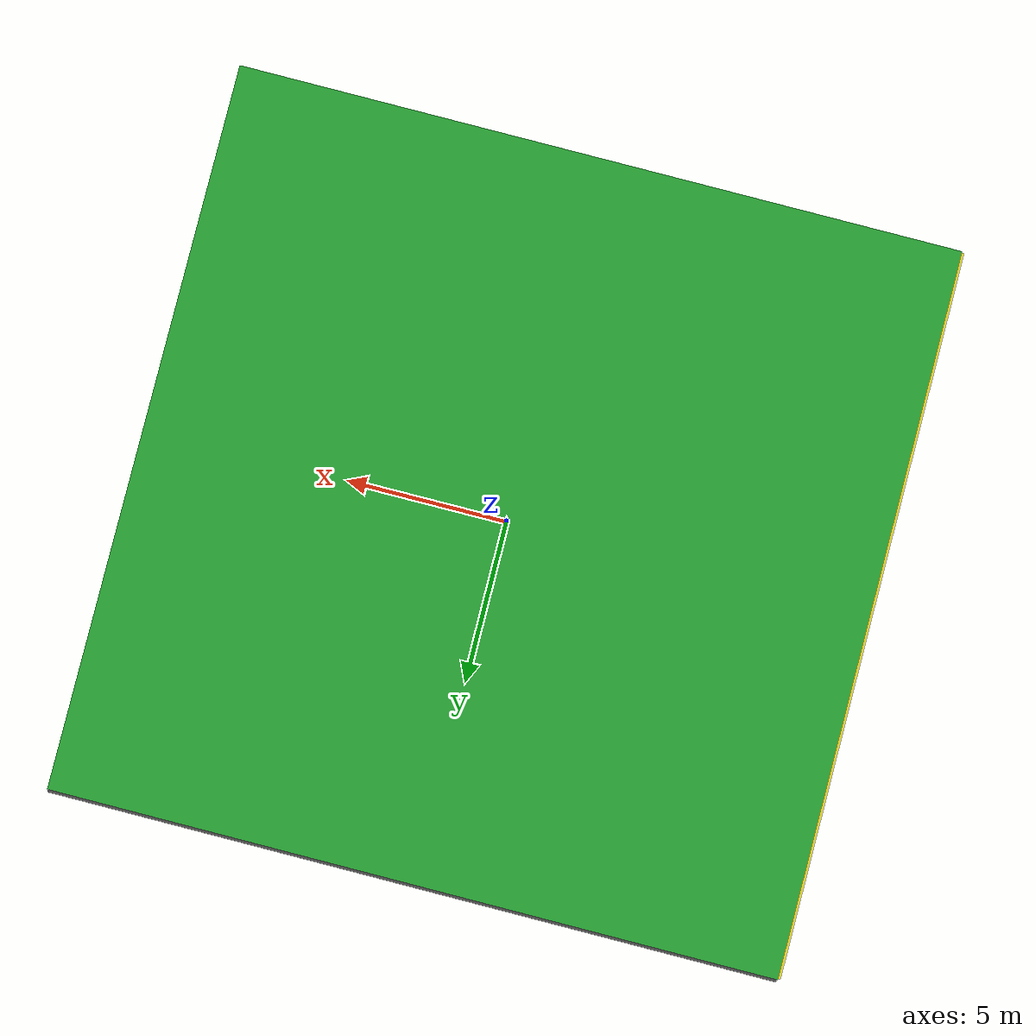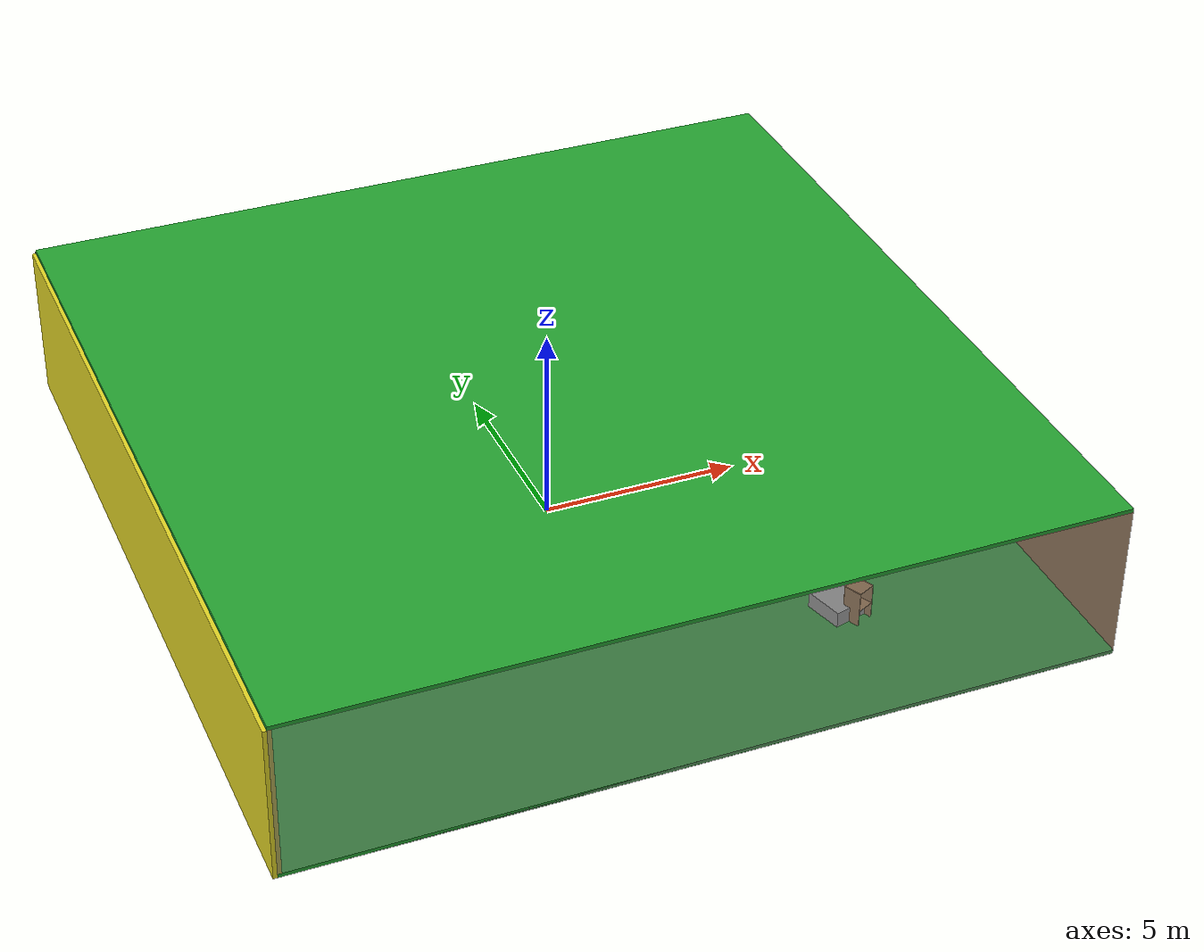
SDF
<sdf version="1.4">
 <world name="default">
  <physics type="ode">
   <max_step_size>0.001</max_step_size>
   <real_time_factor>1</real_time_factor>
   <real_time_update_rate>1000</real_time_update_rate>
   <gravity>0 0 -9.8</gravity>
  </physics>
  <scene><ambient>0.4 0.4 0.4 1</ambient><background>0.7 0.7 0.7 1</background><shadows>1</shadows></scene>
  <model name="Surrounding">
   <static>1</static>
   <link name="Ceiling">
    <collision name="Ceiling_Collision"><geometry><box><size>20 20 0.1</size></box></geometry></collision>
    <visual name="Ceiling_Visual">
     <geometry><box><size>20 20 0.1</size></box></geometry>
     <material>
      <script><uri>file://media/materials/scripts/gazebo.material</uri><name>Gazebo/Green</name></script>
     </material>
    </visual>
    <pose>0 0 4.05 0 0 0</pose>
   </link>
   <link name="Wall_South">
    <collision name="Wall_South_Collision">
     <geometry><box><size>20 0 4</size></box></geometry>
     <pose>0 0 2 0 -0 0</pose>
    </collision>
    <visual name="Wall_South_Visual">
     <pose>0 0 2 0 -0 0</pose>
     <geometry><box><size>20 0 4</size></box></geometry>
     <material>
      <script><uri>file://media/materials/scripts/gazebo.material</uri><name>Gazebo/GreyTransparent</name></script>
     </material>
    </visual>
    <velocity_decay><linear>0</linear><angular>0</angular></velocity_decay>
    <pose>0 -10 0 0 -0 0</pose>
   </link>
   <link name="Wall_East">
    <collision name="Wall_21_Collision">
     <geometry><box><size>20 0 4</size></box></geometry>
     <pose>0 0 2 0 -0 0</pose>
    </collision>
    <visual name="Wall_21_Visual">
     <pose>0 0 2 0 -0 0</pose>
     <geometry><box><size>20 0 4</size></box></geometry>
     <material>
      <script><uri>file://media/materials/scripts/gazebo.material</uri><name>Gazebo/WoodFloor</name></script>
     </material>
    </visual>
    <velocity_decay><linear>0</linear><angular>0</angular></velocity_decay>
    <pose>10 0 0 0 -0 1.5708</pose>
   </link>
   <link name="Wall_North">
    <collision name="Wall_22_Collision">
     <geometry><box><size>20 0.2 4</size></box></geometry>
     <pose>0 0 2 0 -0 0</pose>
    </collision>
    <visual name="Wall_22_Visual">
     <pose>0 0 2 0 -0 0</pose>
     <geometry><box><size>20 0.2 4</size></box></geometry>
     <material>
      <script><uri>file://media/materials/scripts/gazebo.material</uri><name>Gazebo/DarkGrey</name></script>
     </material>
    </visual>
    <velocity_decay><linear>0</linear><angular>0</angular></velocity_decay>
    <pose>0 10 0 0 -0 0</pose>
   </link>
   <link name="Wall_West">
    <collision name="Wall_23_Collision">
     <geometry><box><size>20 0.2 4</size></box></geometry>
     <pose>0 0 2 0 -0 0</pose>
    </collision>
    <visual name="Wall_23_Visual">
     <pose>0 0 2 0 -0 0</pose>
     <geometry><box><size>20 0.2 4</size></box></geometry>
     <material>
      <script><uri>file://media/materials/scripts/gazebo.material</uri><name>Gazebo/YellowGlow</name></script>
     </material>
    </visual>
    <velocity_decay><linear>0</linear><angular>0</angular></velocity_decay>
    <pose>-10 0 0 0 0 -1.5708</pose>
   </link>
   <link name="Ground_link">
    <collision name="collision">
     <pose>0 0 .05 0 -0 0</pose>
     <geometry><box><size>20 20 0.1</size></box></geometry>
    </collision>
    <visual name="visual">
     <pose>0 0 .05 0 -0 0</pose>
     <geometry><box><size>20 20 0.1</size></box></geometry>
     <material>
      <script><uri>file://media/materials/scripts/gazebo.material</uri><name>Gazebo/GreenGlow</name></script>
     </material>
    </visual>
   </link>
   <static>1</static>
  </model>
  <spherical_coordinates>
   <surface_model>EARTH_WGS84</surface_model>
   <latitude_deg>0</latitude_deg>
   <longitude_deg>0</longitude_deg>
   <elevation>0</elevation>
   <heading_deg>0</heading_deg>
  </spherical_coordinates>
  <light name="lightball_0" type="diffuse">
   <diffuse>0.8 0.8 0.8 1</diffuse>
   <specular>0.2 0.2 0.2 1</specular>
   <attenuation>
    <range>100</range>
    <constant>0.7</constant>
    <linear>0.01</linear>
    <quadratic>0.001</quadratic>
   </attenuation>
   <direction>-0.5 0.1 -0.9</direction>
   <pose>-5.03983377705 -7.13236989792 3.50700413756 0 0 0</pose>
  </light>
  <light name="lightball_1" type="diffuse">
   <diffuse>0.8 0.8 0.8 1</diffuse>
   <specular>0.2 0.2 0.2 1</specular>
   <attenuation>
    <range>100</range>
    <constant>0.7</constant>
    <linear>0.01</linear>
    <quadratic>0.001</quadratic>
   </attenuation>
   <direction>-0.5 0.1 -0.9</direction>
   <pose>3.46461811188 -2.30990492638 0.604346453803 0 0 0</pose>
  </light>
  <light name="lightball_2" type="diffuse">
   <diffuse>0.8 0.8 0.8 1</diffuse>
   <specular>0.2 0.2 0.2 1</specular>
   <attenuation>
    <range>100</range>
    <constant>0.7</constant>
    <linear>0.01</linear>
    <quadratic>0.001</quadratic>
   </attenuation>
   <direction>-0.5 0.1 -0.9</direction>
   <pose>-3.29492864911 -0.0284473131228 3.09683308956 0 0 0</pose>
  </light>
  <light name="lightball_3" type="diffuse">
   <diffuse>0.8 0.8 0.8 1</diffuse>
   <specular>0.2 0.2 0.2 1</specular>
   <attenuation>
    <range>100</range>
    <constant>0.7</constant>
    <linear>0.01</linear>
    <quadratic>0.001</quadratic>
   </attenuation>
   <direction>-0.5 0.1 -0.9</direction>
   <pose>3.43337145401 -3.28679779114 1.55902905441 0 0 0</pose>
  </light>
  <light name="lightball_4" type="diffuse">
   <diffuse>0.8 0.8 0.8 1</diffuse>
   <specular>0.2 0.2 0.2 1</specular>
   <attenuation>
    <range>100</range>
    <constant>0.7</constant>
    <linear>0.01</linear>
    <quadratic>0.001</quadratic>
   </attenuation>
   <direction>-0.5 0.1 -0.9</direction>
   <pose>5.45801123371 -3.51659800899 1.20861912926 0 0 0</pose>
  </light>
  <light name="lightball_5" type="diffuse">
   <diffuse>0.8 0.8 0.8 1</diffuse>
   <specular>0.2 0.2 0.2 1</specular>
   <attenuation>
    <range>100</range>
    <constant>0.7</constant>
    <linear>0.01</linear>
    <quadratic>0.001</quadratic>
   </attenuation>
   <direction>-0.5 0.1 -0.9</direction>
   <pose>-3.70090621159 -6.71281227767 2.44614633396 0 0 0</pose>
  </light>
  <light name="lightball_6" type="diffuse">
   <diffuse>0.8 0.8 0.8 1</diffuse>
   <specular>0.2 0.2 0.2 1</specular>
   <attenuation>
    <range>100</range>
    <constant>0.7</constant>
    <linear>0.01</linear>
    <quadratic>0.001</quadratic>
   </attenuation>
   <direction>-0.5 0.1 -0.9</direction>
   <pose>-6.76103102183 -5.20362138444 1.76393284948 0 0 0</pose>
  </light>
  <light name="lightball_7" type="diffuse">
   <diffuse>0.8 0.8 0.8 1</diffuse>
   <specular>0.2 0.2 0.2 1</specular>
   <attenuation>
    <range>100</range>
    <constant>0.7</constant>
    <linear>0.01</linear>
    <quadratic>0.001</quadratic>
   </attenuation>
   <direction>-0.5 0.1 -0.9</direction>
   <pose>-0.700315593153 8.8934190261 2.87830357969 0 0 0</pose>
  </light>
  <light name="lightball_8" type="diffuse">
   <diffuse>0.8 0.8 0.8 1</diffuse>
   <specular>0.2 0.2 0.2 1</specular>
   <attenuation>
    <range>100</range>
    <constant>0.7</constant>
    <linear>0.01</linear>
    <quadratic>0.001</quadratic>
   </attenuation>
   <direction>-0.5 0.1 -0.9</direction>
   <pose>2.41313373479 0.668950052109 1.0763764572 0 0 0</pose>
  </light>
  <light name="lightball_9" type="diffuse">
   <diffuse>0.8 0.8 0.8 1</diffuse>
   <specular>0.2 0.2 0.2 1</specular>
   <attenuation>
    <range>100</range>
    <constant>0.7</constant>
    <linear>0.01</linear>
    <quadratic>0.001</quadratic>
   </attenuation>
   <direction>-0.5 0.1 -0.9</direction>
   <pose>-3.77312289745 3.98107071866 2.9971897097 0 0 0</pose>
  </light>
  <light name="lightball_10" type="diffuse">
   <diffuse>0.8 0.8 0.8 1</diffuse>
   <specular>0.2 0.2 0.2 1</specular>
   <attenuation>
    <range>100</range>
    <constant>0.7</constant>
    <linear>0.01</linear>
    <quadratic>0.001</quadratic>
   </attenuation>
   <direction>-0.5 0.1 -0.9</direction>
   <pose>-4.44753962621 8.62911436904 3.16937087559 0 0 0</pose>
  </light>
  <light name="lightball_11" type="diffuse">
   <diffuse>0.8 0.8 0.8 1</diffuse>
   <specular>0.2 0.2 0.2 1</specular>
   <attenuation>
    <range>100</range>
    <constant>0.7</constant>
    <linear>0.01</linear>
    <quadratic>0.001</quadratic>
   </attenuation>
   <direction>-0.5 0.1 -0.9</direction>
   <pose>-4.89883805753 -4.52780582647 3.36187271426 0 0 0</pose>
  </light>
  <include><uri>model://cabinet</uri><pose>-7.67438790031 1.86091731781 0 0 0 1.51147764059</pose></include>
  <include><uri>model://cabinet</uri><pose>-8.18850053195 6.6124542701 0 0 0 0.0213591076177</pose></include>
  <include>
   <uri>model://robocup_3Dsim_goal</uri>
   <pose>-4.31135291969 -4.40739610323 0 0 0 3.01587077041</pose>
  </include>
  <include>
   <uri>model://robocup_3Dsim_goal</uri>
   <pose>-0.97432592062 0.578072415276 0 0 0 2.97455584306</pose>
  </include>
  <include><uri>model://cabinet</uri><pose>5.08593022193 -6.74597293276 0 0 0 2.01657556315</pose></include>
  <include>
   <uri>model://textured_shapes</uri>
   <pose>4.4444501613 -4.84956002546 0 0 0 0.266622933845</pose>
  </include>
  <include>
   <uri>model://robocup_3Dsim_goal</uri>
   <pose>7.74748793482 -4.14089275652 0 0 0 0.530043108973</pose>
  </include>
 </world>
</sdf>

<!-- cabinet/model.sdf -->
<sdf version="1.5">
  <model name="cabinet">
    <static>true</static>
    <link name="cabinet_bottom_plate">
      <inertial>
        <pose>0 0 -1 0 0 0</pose>
        <inertia>
          <ixx>2.050000</ixx>
          <ixy>0</ixy>
          <ixz>0</ixz>
          <iyy>2.050000</iyy>
          <iyz>0</iyz>
          <izz>2.050000</izz>
        </inertia>
        <mass>25.000000</mass>
      </inertial>
      <collision name="cabinet_bottom_plate_geom">
        <pose>0 0 0.010000 0 0 0</pose>
        <geometry>
          <box>
            <size>0.450000 0.450000 0.020000</size>
          </box>
        </geometry>
      </collision>
      <visual name="cabinet_bottom_plate_geom_visual">
        <pose>0 0 0.010000 0 0 0</pose>
        <geometry>
          <box>
            <size>0.450000 0.450000 0.020000</size>
          </box>
        </geometry>
        <material>
          <script>
            <uri>model://media/materials/scripts/gazebo.material</uri>
            <name>Gazebo/Wood</name>
          </script>
        </material>
      </visual>
      <collision name="cabinet_bottom_plate_geom_cabinet_back_plate">
        <pose>0.235000 0 0.510000 0 0 0</pose>
        <geometry>
          <box>
            <size>0.020000 0.450000 1.020000</size>
          </box>
        </geometry>
      </collision>
      <visual name="cabinet_bottom_plate_geom_cabinet_back_plate_visual">
        <pose>0.235000 0 0.510000 0 0 0</pose>
        <geometry>
          <box>
            <size>0.020000 0.450000 1.020000</size>
          </box>
        </geometry>
        <material>
          <script>
            <uri>model://media/materials/scripts/gazebo.material</uri>
            <name>Gazebo/Wood</name>
          </script>
        </material>
      </visual>
      <collision name="cabinet_bottom_plate_geom_cabinet_left_plate">
        <pose>0 0.235000 0.510000 0 0 0</pose>
        <geometry>
          <box>
            <size>0.450000 0.020000 1.020000</size>
          </box>
        </geometry>
      </collision>
      <visual name="cabinet_bottom_plate_geom_cabinet_left_plate_visual">
        <pose>0 0.235000 0.510000 0 0 0</pose>
        <geometry>
          <box>
            <size>0.450000 0.020000 1.020000</size>
          </box>
        </geometry>
        <material>
          <script>
            <uri>model://media/materials/scripts/gazebo.material</uri>
            <name>Gazebo/Wood</name>
          </script>
        </material>
      </visual>
      <collision name="cabinet_bottom_plate_geom_cabinet_middle_plate">
        <pose>0 0 0.510000 0 0 0</pose>
        <geometry>
          <box>
            <size>0.450000 0.450000 0.020000</size>
          </box>
        </geometry>
      </collision>
      <visual name="cabinet_bottom_plate_geom_cabinet_middle_plate_visual">
        <pose>0 0 0.510000 0 0 0</pose>
        <geometry>
          <box>
            <size>0.450000 0.450000 0.020000</size>
          </box>
        </geometry>
        <material>
          <script>
            <uri>model://media/materials/scripts/gazebo.material</uri>
            <name>Gazebo/Wood</name>
          </script>
        </material>
      </visual>
      <collision name="cabinet_bottom_plate_geom_cabinet_right_plate">
        <pose>0 -0.235000 0.510000 0 0 0</pose>
        <geometry>
          <box>
            <size>0.450000 0.020000 1.020000</size>
          </box>
        </geometry>
      </collision>
      <visual name="cabinet_bottom_plate_geom_cabinet_right_plate_visual">
        <pose>0 -0.235000 0.510000 0 0 0</pose>
        <geometry>
          <box>
            <size>0.450000 0.020000 1.020000</size>
          </box>
        </geometry>
        <material>
          <script>
            <uri>model://media/materials/scripts/gazebo.material</uri>
            <name>Gazebo/Wood</name>
          </script>
        </material>
      </visual>
      <collision name="cabinet_bottom_plate_geom_cabinet_top_plate">
        <pose>0 0 1.010000 0 0 0</pose>
        <geometry>
          <box>
            <size>0.450000 0.450000 0.020000</size>
          </box>
        </geometry>
      </collision>
      <visual name="cabinet_bottom_plate_geom_cabinet_top_plate_visual">
        <pose>0 0 1.010000 0 0 0</pose>
        <geometry>
          <box>
            <size>0.450000 0.450000 0.020000</size>
          </box>
        </geometry>
        <material>
          <script>
            <uri>model://media/materials/scripts/gazebo.material</uri>
            <name>Gazebo/Wood</name>
          </script>
        </material>
      </visual>
    </link>
  </model>
</sdf>

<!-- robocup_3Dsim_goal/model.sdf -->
<sdf version="1.5">
  <model name="robocup_3d_goal">
    <static>true</static>
    <link name="left_post">
      <pose>0 1.05 0.45 0 0 0</pose>
      <collision name="collision">
        <geometry>
          <cylinder>
            <radius>0.05</radius>
            <length>0.9</length>
          </cylinder>
        </geometry>
      </collision>
      <visual name="visual">
        <geometry>
          <cylinder>
            <radius>0.05</radius>
            <length>0.9</length>
          </cylinder>
        </geometry>
        <material>
          <script>
            <uri>file://media/materials/scripts/gazebo.material</uri>
            <name>Gazebo/ZincYellow</name>
          </script>
        </material>
      </visual>
    </link>
    <link name="left_support_horiz_lower">
      <pose>0.30 1.05 0.01 0 0 0</pose>
      <collision name="collision">
        <geometry>
          <box>
            <size>0.50 0.02 0.02</size>
          </box>
        </geometry>
      </collision>
      <visual name="visual">
        <geometry>
          <box>
            <size>0.50 0.02 0.02</size>
          </box>
        </geometry>
        <material>
          <script>
            <uri>file://media/materials/scripts/gazebo.material</uri>
            <name>Gazebo/White</name>
          </script>
        </material>
      </visual>
    </link>
    <link name="left_support_horiz_upper">
      <pose>0.30 1.05 0.79 0 0 0</pose>
      <collision name="collision">
        <geometry>
          <box>
            <size>0.50 0.02 0.02</size>
          </box>
        </geometry>
      </collision>
      <visual name="visual">
        <geometry>
          <box>
            <size>0.50 0.02 0.02</size>
          </box>
        </geometry>
        <material>
          <script>
            <uri>file://media/materials/scripts/gazebo.material</uri>
            <name>Gazebo/White</name>
          </script>
        </material>
      </visual>
    </link>
    <link name="left_support_vertical">
      <pose>0.56 1.05 0.4 0 1.5708 0</pose>
      <collision name="collision">
        <geometry>
          <box>
            <size>0.80 0.02 0.02</size>
          </box>
        </geometry>
      </collision>
      <visual name="visual">
        <geometry>
          <box>
            <size>0.80 0.02 0.02</size>
          </box>
        </geometry>
        <material>
          <script>
            <uri>file://media/materials/scripts/gazebo.material</uri>
            <name>Gazebo/White</name>
          </script>
        </material>
      </visual>
    </link>
    <link name="right_support_horiz_lower">
      <pose>0.30 -1.05 0.01 0 0 0</pose>
      <collision name="collision">
        <geometry>
          <box>
            <size>0.50 0.02 0.02</size>
          </box>
        </geometry>
      </collision>
      <visual name="visual">
        <geometry>
          <box>
            <size>0.50 0.02 0.02</size>
          </box>
        </geometry>
        <material>
          <script>
            <uri>file://media/materials/scripts/gazebo.material</uri>
            <name>Gazebo/White</name>
          </script>
        </material>
      </visual>
    </link>
    <link name="right_support_horiz_upper">
      <pose>0.30 -1.05 0.79 0 0 0</pose>
      <collision name="collision">
        <geometry>
          <box>
            <size>0.50 0.02 0.02</size>
          </box>
        </geometry>
      </collision>
      <visual name="visual">
        <geometry>
          <box>
            <size>0.50 0.02 0.02</size>
          </box>
        </geometry>
        <material>
          <script>
            <uri>file://media/materials/scripts/gazebo.material</uri>
            <name>Gazebo/White</name>
          </script>
        </material>
      </visual>
    </link>
    <link name="right_support_vertical">
      <pose>0.56 -1.05 0.4 0 1.5708 0</pose>
      <collision name="collision">
        <geometry>
          <box>
            <size>0.80 0.02 0.02</size>
          </box>
        </geometry>
      </collision>
      <visual name="visual">
        <geometry>
          <box>
            <size>0.80 0.02 0.02</size>
          </box>
        </geometry>
        <material>
          <script>
            <uri>file://media/materials/scripts/gazebo.material</uri>
            <name>Gazebo/White</name>
          </script>
        </material>
      </visual>
    </link>
    <link name="center_support_horiz_lower">
      <pose>0.56 0 0.01 0 1.5708 0</pose>
      <collision name="collision">
        <geometry>
          <box>
            <size>0.02 2.08 0.02</size>
          </box>
        </geometry>
      </collision>
      <visual name="visual">
        <geometry>
          <box>
            <size>0.02 2.08 0.02</size>
          </box>
        </geometry>
        <material>
          <script>
            <uri>file://media/materials/scripts/gazebo.material</uri>
            <name>Gazebo/White</name>
          </script>
        </material>
      </visual>
    </link>
    <link name="center_support_horiz_upper">
      <pose>0.56 0 0.79 0 1.5708 0</pose>
      <collision name="collision">
        <geometry>
          <box>
            <size>0.02 2.08 0.02</size>
          </box>
        </geometry>
      </collision>
      <visual name="visual">
        <geometry>
          <box>
            <size>0.02 2.08 0.02</size>
          </box>
        </geometry>
        <material>
          <script>
            <uri>file://media/materials/scripts/gazebo.material</uri>
            <name>Gazebo/White</name>
          </script>
        </material>
      </visual>
    </link>
    <link name="right_post">
      <pose>0 -1.05 0.45 0 0 0</pose>
      <collision name="collision">
        <geometry>
          <cylinder>
            <radius>0.05</radius>
            <length>0.9</length>
          </cylinder>
        </geometry>
      </collision>
      <visual name="visual">
        <geometry>
          <cylinder>
            <radius>0.05</radius>
            <length>0.9</length>
          </cylinder>
        </geometry>
        <material>
          <script>
            <uri>file://media/materials/scripts/gazebo.material</uri>
            <name>Gazebo/ZincYellow</name>
          </script>
        </material>
      </visual>
    </link>
    <link name="crossbar">
      <pose>0 0 0.85 1.57 1.57 0</pose>
      <collision name="collision">
        <geometry>
          <cylinder>
            <radius>0.05</radius>
            <length>2.0</length>
          </cylinder>
        </geometry>
      </collision>
      <visual name="visual">
        <geometry>
          <cylinder>
            <radius>0.05</radius>
            <length>2.0</length>
          </cylinder>
        </geometry>
        <material>
          <script>
            <uri>file://media/materials/scripts/gazebo.material</uri>
            <name>Gazebo/ZincYellow</name>
          </script>
        </material>
      </visual>
    </link>
    <link name="center_net">
      <pose>0.56 0 0.40 0 0 0</pose>
      <collision name="collision">
        <geometry>
          <box>
            <size>0.01 2.1 0.80</size>
          </box>
        </geometry>
      </collision>
      <visual name="visual">
        <geometry>
          <box>
            <size>0.01 2.1 0.80</size>
          </box>
        </geometry>
        <material>
          <script>
            <uri>model://../model_source/models/robocup09_spl_field/materials/scripts/</uri>
            <uri>model://../model_source/models/robocup09_spl_field/materials/textures/</uri>
            <name>RoboCup/Net</name>
          </script>
        </material>
      </visual>
    </link>
    <link name="left_net">
      <pose>0.30 1.05 0.40 0 0 0</pose>
      <collision name="collision">
        <geometry>
          <box>
            <size>0.50 0.01 0.76</size>
          </box>
        </geometry>
      </collision>
      <visual name="visual">
        <geometry>
          <box>
            <size>0.50 0.01 0.76</size>
          </box>
        </geometry>
        <material>
          <script>
            <uri>model://../model_source/models/robocup09_spl_field/materials/scripts/</uri>
            <uri>model://../model_source/models/robocup09_spl_field/materials/textures/</uri>
            <name>RoboCup/Net</name>
          </script>
        </material>
      </visual>
    </link>
    <link name="right_net">
      <pose>0.30 -1.05 0.40 0 0 0</pose>
      <collision name="collision">
        <geometry>
          <box>
            <size>0.50 0.01 0.76</size>
          </box>
        </geometry>
      </collision>
      <visual name="visual">
        <geometry>
          <box>
            <size>0.50 0.01 0.76</size>
          </box>
        </geometry>
        <material>
          <script>
            <uri>model://../model_source/models/robocup09_spl_field/materials/scripts/</uri>
            <uri>model://../model_source/models/robocup09_spl_field/materials/textures/</uri>
            <name>RoboCup/Net</name>
          </script>
        </material>
      </visual>
    </link>
  </model>
</sdf>

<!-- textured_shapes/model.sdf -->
<sdf version="1.6">
  <model name="textured_shapes">
    <pose>0 0 0.5 0 0 0</pose>
    <link name="box">
      <pose>0 -1.5 0 0 0 0</pose>
      <collision name="collision">
        <geometry>
          <box>
            <size>1 1 1</size>
          </box>
        </geometry>
      </collision>
      <visual name="visual">
        <geometry>
          <box>
            <size>1 1 1</size>
          </box>
        </geometry>
        <material>
          <script>
            <uri>model://../model_source/models/textured_shapes/materials/scripts</uri>
            <uri>model://../model_source/models/textured_shapes/materials/textures</uri>
            <name>TexturedShape/Squares</name>
          </script>
        </material>
      </visual>
    </link>
    <link name="sphere">
      <collision name="collision">
        <geometry>
          <sphere>
            <radius>0.5</radius>
          </sphere>
        </geometry>
      </collision>
      <visual name="visual">
        <geometry>
          <sphere>
            <radius>0.5</radius>
          </sphere>
        </geometry>
        <material>
          <script>
            <uri>model://../model_source/models/textured_shapes/materials/scripts</uri>
            <uri>model://../model_source/models/textured_shapes/materials/textures</uri>
            <name>TexturedShape/Squares</name>
          </script>
        </material>
      </visual>
    </link>
    <link name="cylinder">
      <pose>0 1.5 0 0 0 0</pose>
      <collision name="collision">
        <geometry>
          <cylinder>
            <radius>0.5</radius>
            <length>1</length>
          </cylinder>
        </geometry>
      </collision>
      <visual name="visual">
        <geometry>
          <cylinder>
            <radius>0.5</radius>
            <length>1</length>
          </cylinder>
        </geometry>
        <material>
          <script>
            <uri>model://../model_source/models/textured_shapes/materials/scripts</uri>
            <uri>model://../model_source/models/textured_shapes/materials/textures</uri>
            <name>TexturedShape/Squares</name>
          </script>
        </material>
      </visual>
    </link>
  </model>
</sdf>
